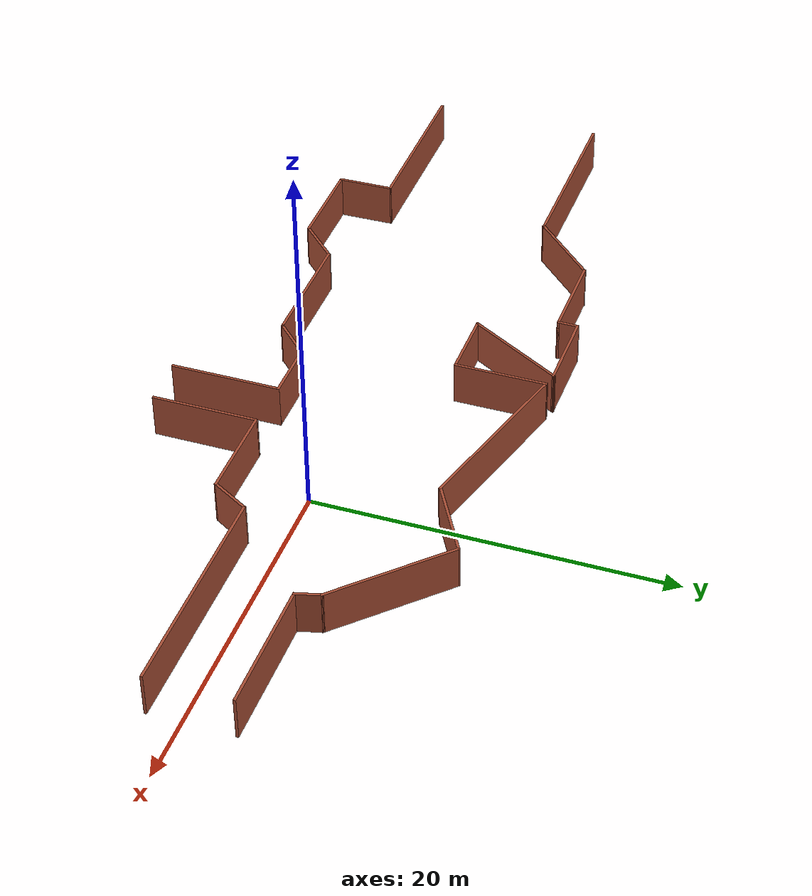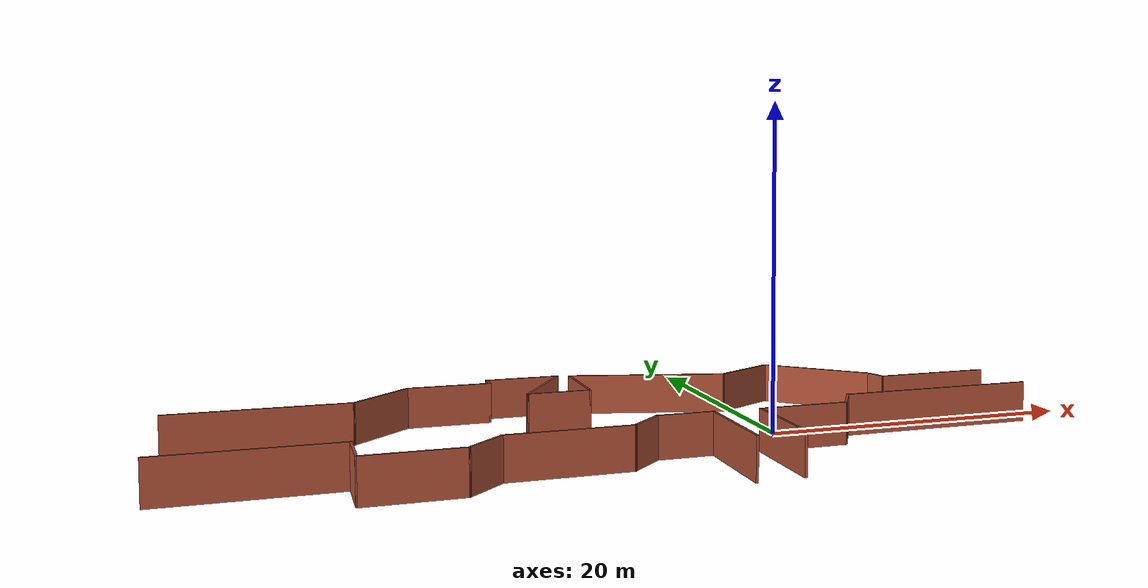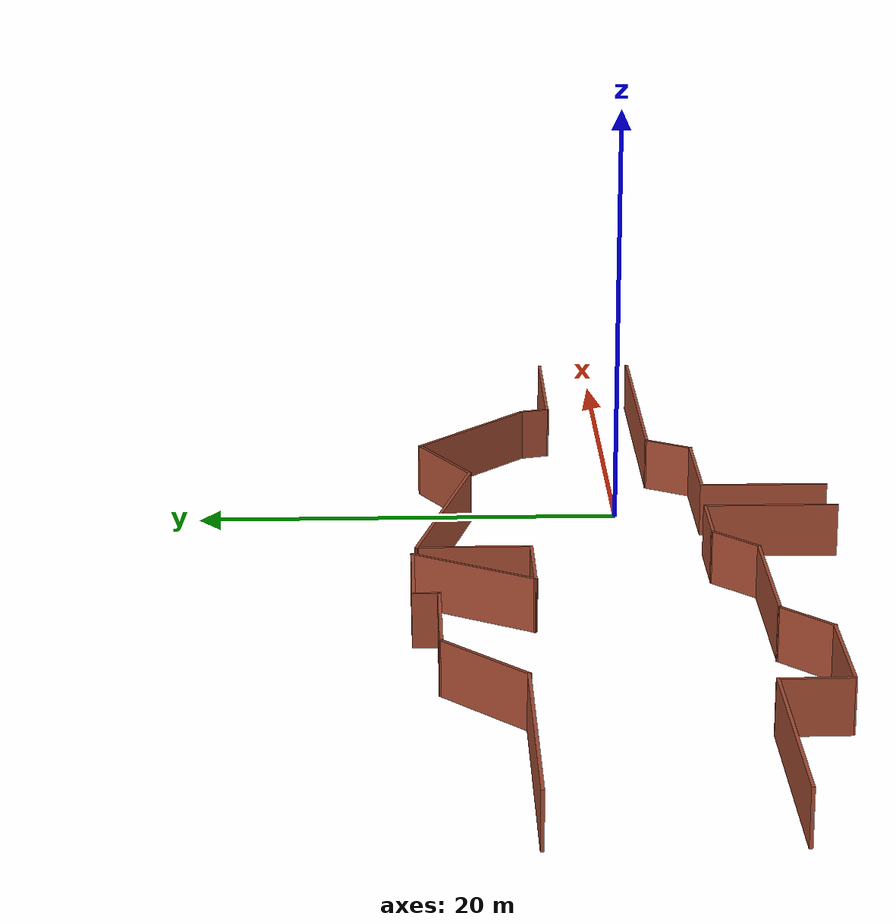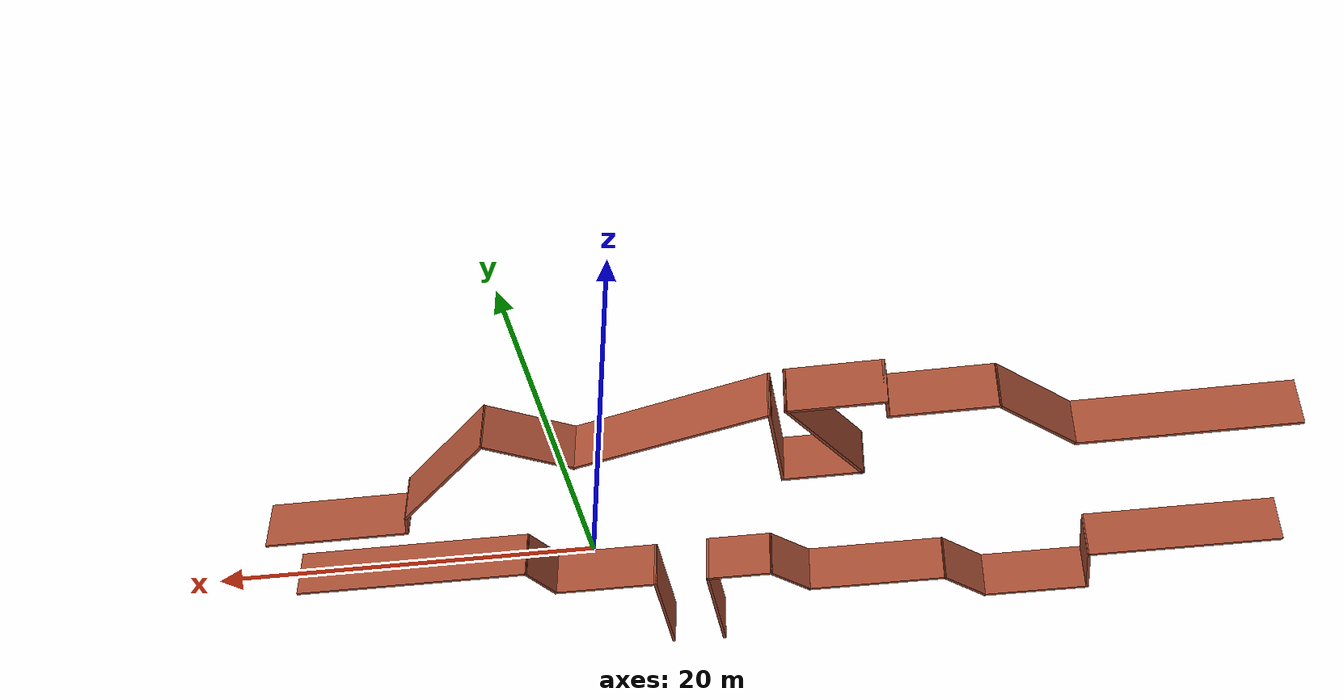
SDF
<?xml version='1.0'?>
<sdf version='1.7'>
  <model name='Paredes'>
    <pose>-9.08506 0.015373 0 0 -0 0</pose>
    <link name='Wall_10'>
      <collision name='Wall_10_Collision'>
        <geometry>
          <box>
            <size>5.5 0.15 2.5</size>
          </box>
        </geometry>
        <pose>0 0 1.25 0 -0 0</pose>
      </collision>
      <visual name='Wall_10_Visual'>
        <pose>0 0 1.25 0 -0 0</pose>
        <geometry>
          <box>
            <size>5.5 0.15 2.5</size>
          </box>
        </geometry>
        <material>
          <script>
            <uri>file://media/materials/scripts/gazebo.material</uri>
            <name>Gazebo/Bricks</name>
          </script>
          <ambient>1 1 1 1</ambient>
        </material>
        <meta>
          <layer>0</layer>
        </meta>
      </visual>
      <pose>-13.1667 -7.6021 0 0 -0 0</pose>
    </link>
    <link name='Wall_11'>
      <collision name='Wall_11_Collision'>
        <geometry>
          <box>
            <size>3 0.15 2.5</size>
          </box>
        </geometry>
        <pose>0 0 1.25 0 -0 0</pose>
      </collision>
      <visual name='Wall_11_Visual'>
        <pose>0 0 1.25 0 -0 0</pose>
        <geometry>
          <box>
            <size>3 0.15 2.5</size>
          </box>
        </geometry>
        <material>
          <script>
            <uri>file://media/materials/scripts/gazebo.material</uri>
            <name>Gazebo/Bricks</name>
          </script>
          <ambient>1 1 1 1</ambient>
        </material>
        <meta>
          <layer>0</layer>
        </meta>
      </visual>
      <pose>-9.4841 -6.59447 0 0 -0 0.785398</pose>
    </link>
    <link name='Wall_12'>
      <collision name='Wall_12_Collision'>
        <geometry>
          <box>
            <size>7.25 0.15 2.5</size>
          </box>
        </geometry>
        <pose>0 0 1.25 0 -0 0</pose>
      </collision>
      <visual name='Wall_12_Visual'>
        <pose>0 0 1.25 0 -0 0</pose>
        <geometry>
          <box>
            <size>7.25 0.15 2.5</size>
          </box>
        </geometry>
        <material>
          <script>
            <uri>file://media/materials/scripts/gazebo.material</uri>
            <name>Gazebo/Bricks</name>
          </script>
          <ambient>1 1 1 1</ambient>
        </material>
        <meta>
          <layer>0</layer>
        </meta>
      </visual>
      <pose>-4.92647 -5.58685 0 0 -0 0</pose>
    </link>
    <link name='Wall_13'>
      <collision name='Wall_13_Collision'>
        <geometry>
          <box>
            <size>2.75 0.15 2.5</size>
          </box>
        </geometry>
        <pose>0 0 1.25 0 -0 0</pose>
      </collision>
      <visual name='Wall_13_Visual'>
        <pose>0 0 1.25 0 -0 0</pose>
        <geometry>
          <box>
            <size>2.75 0.15 2.5</size>
          </box>
        </geometry>
        <material>
          <script>
            <uri>file://media/materials/scripts/gazebo.material</uri>
            <name>Gazebo/Bricks</name>
          </script>
          <ambient>1 1 1 1</ambient>
        </material>
        <meta>
          <layer>0</layer>
        </meta>
      </visual>
      <pose>-0.457232 -4.66761 0 0 -0 0.785398</pose>
    </link>
    <link name='Wall_14'>
      <collision name='Wall_14_Collision'>
        <geometry>
          <box>
            <size>3.5 0.15 2.5</size>
          </box>
        </geometry>
        <pose>0 0 1.25 0 -0 0</pose>
      </collision>
      <visual name='Wall_14_Visual'>
        <pose>0 0 1.25 0 -0 0</pose>
        <geometry>
          <box>
            <size>3.5 0.15 2.5</size>
          </box>
        </geometry>
        <material>
          <script>
            <uri>file://media/materials/scripts/gazebo.material</uri>
            <name>Gazebo/Bricks</name>
          </script>
          <ambient>1 1 1 1</ambient>
        </material>
        <meta>
          <layer>0</layer>
        </meta>
      </visual>
      <pose>2.13701 -3.74837 0 0 -0 0</pose>
    </link>
    <link name='Wall_15'>
      <collision name='Wall_15_Collision'>
        <geometry>
          <box>
            <size>6.25 0.15 2.5</size>
          </box>
        </geometry>
        <pose>0 0 1.25 0 -0 0</pose>
      </collision>
      <visual name='Wall_15_Visual'>
        <pose>0 0 1.25 0 -0 0</pose>
        <geometry>
          <box>
            <size>6.25 0.15 2.5</size>
          </box>
        </geometry>
        <material>
          <script>
            <uri>file://media/materials/scripts/gazebo.material</uri>
            <name>Gazebo/Bricks</name>
          </script>
          <ambient>1 1 1 1</ambient>
        </material>
        <meta>
          <layer>0</layer>
        </meta>
      </visual>
      <pose>3.81201 -6.79837 0 0 -0 -1.5708</pose>
    </link>
    <link name='Wall_18'>
      <collision name='Wall_18_Collision'>
        <geometry>
          <box>
            <size>6 0.15 2.5</size>
          </box>
        </geometry>
        <pose>0 0 1.25 0 -0 0</pose>
      </collision>
      <visual name='Wall_18_Visual'>
        <pose>0 0 1.25 0 -0 0</pose>
        <geometry>
          <box>
            <size>6 0.15 2.5</size>
          </box>
        </geometry>
        <material>
          <script>
            <uri>file://media/materials/scripts/gazebo.material</uri>
            <name>Gazebo/Bricks</name>
          </script>
          <ambient>1 1 1 1</ambient>
        </material>
        <meta>
          <layer>0</layer>
        </meta>
      </visual>
      <pose>6.61325 -6.81078 0 0 -0 1.5708</pose>
    </link>
    <link name='Wall_19'>
      <collision name='Wall_19_Collision'>
        <geometry>
          <box>
            <size>5.5 0.15 2.5</size>
          </box>
        </geometry>
        <pose>0 0 1.25 0 -0 0</pose>
      </collision>
      <visual name='Wall_19_Visual'>
        <pose>0 0 1.25 0 -0 0</pose>
        <geometry>
          <box>
            <size>5.5 0.15 2.5</size>
          </box>
        </geometry>
        <material>
          <script>
            <uri>file://media/materials/scripts/gazebo.material</uri>
            <name>Gazebo/Bricks</name>
          </script>
          <ambient>1 1 1 1</ambient>
        </material>
        <meta>
          <layer>0</layer>
        </meta>
      </visual>
      <pose>9.28825 -3.88578 0 0 -0 0</pose>
    </link>
    <link name='Wall_20'>
      <collision name='Wall_20_Collision'>
        <geometry>
          <box>
            <size>2.5 0.15 2.5</size>
          </box>
        </geometry>
        <pose>0 0 1.25 0 -0 0</pose>
      </collision>
      <visual name='Wall_20_Visual'>
        <pose>0 0 1.25 0 -0 0</pose>
        <geometry>
          <box>
            <size>2.5 0.15 2.5</size>
          </box>
        </geometry>
        <material>
          <script>
            <uri>file://media/materials/scripts/gazebo.material</uri>
            <name>Gazebo/Bricks</name>
          </script>
          <ambient>1 1 1 1</ambient>
        </material>
        <meta>
          <layer>0</layer>
        </meta>
      </visual>
      <pose>12.5508 -2.8682 0 0 -0 1.0472</pose>
    </link>
    <link name='Wall_21'>
      <collision name='Wall_21_Collision'>
        <geometry>
          <box>
            <size>12.5 0.15 2.5</size>
          </box>
        </geometry>
        <pose>0 0 1.25 0 -0 0</pose>
      </collision>
      <visual name='Wall_21_Visual'>
        <pose>0 0 1.25 0 -0 0</pose>
        <geometry>
          <box>
            <size>12.5 0.15 2.5</size>
          </box>
        </geometry>
        <material>
          <script>
            <uri>file://media/materials/scripts/gazebo.material</uri>
            <name>Gazebo/Bricks</name>
          </script>
          <ambient>1 1 1 1</ambient>
        </material>
        <meta>
          <layer>0</layer>
        </meta>
      </visual>
      <pose>19.3133 -1.85062 0 0 -0 0</pose>
    </link>
    <link name='Wall_24'>
      <collision name='Wall_24_Collision'>
        <geometry>
          <box>
            <size>10.5 0.15 2.5</size>
          </box>
        </geometry>
        <pose>0 0 1.25 0 -0 0</pose>
      </collision>
      <visual name='Wall_24_Visual'>
        <pose>0 0 1.25 0 -0 0</pose>
        <geometry>
          <box>
            <size>10.5 0.15 2.5</size>
          </box>
        </geometry>
        <material>
          <script>
            <uri>file://media/materials/scripts/gazebo.material</uri>
            <name>Gazebo/Bricks</name>
          </script>
          <ambient>1 1 1 1</ambient>
        </material>
        <meta>
          <layer>0</layer>
        </meta>
      </visual>
      <pose>-20.2667 5.29145 0 0 -0 0</pose>
    </link>
    <link name='Wall_25'>
      <collision name='Wall_25_Collision'>
        <geometry>
          <box>
            <size>5 0.15 2.5</size>
          </box>
        </geometry>
        <pose>0 0 1.25 0 -0 0</pose>
      </collision>
      <visual name='Wall_25_Visual'>
        <pose>0 0 1.25 0 -0 0</pose>
        <geometry>
          <box>
            <size>5 0.15 2.5</size>
          </box>
        </geometry>
        <material>
          <script>
            <uri>file://media/materials/scripts/gazebo.material</uri>
            <name>Gazebo/Bricks</name>
          </script>
          <ambient>1 1 1 1</ambient>
        </material>
        <meta>
          <layer>0</layer>
        </meta>
      </visual>
      <pose>-13.377 7.00618 0 0 -0 0.785398</pose>
    </link>
    <link name='Wall_26'>
      <collision name='Wall_26_Collision'>
        <geometry>
          <box>
            <size>5.25 0.15 2.5</size>
          </box>
        </geometry>
        <pose>0 0 1.25 0 -0 0</pose>
      </collision>
      <visual name='Wall_26_Visual'>
        <pose>0 0 1.25 0 -0 0</pose>
        <geometry>
          <box>
            <size>5.25 0.15 2.5</size>
          </box>
        </geometry>
        <material>
          <script>
            <uri>file://media/materials/scripts/gazebo.material</uri>
            <name>Gazebo/Bricks</name>
          </script>
          <ambient>1 1 1 1</ambient>
        </material>
        <meta>
          <layer>0</layer>
        </meta>
      </visual>
      <pose>-9.11226 8.72092 0 0 -0 0</pose>
    </link>
    <link name='Wall_27'>
      <collision name='Wall_27_Collision'>
        <geometry>
          <box>
            <size>1.25 0.15 2.5</size>
          </box>
        </geometry>
        <pose>0 0 1.25 0 -0 0</pose>
      </collision>
      <visual name='Wall_27_Visual'>
        <pose>0 0 1.25 0 -0 0</pose>
        <geometry>
          <box>
            <size>1.25 0.15 2.5</size>
          </box>
        </geometry>
        <material>
          <script>
            <uri>file://media/materials/scripts/gazebo.material</uri>
            <name>Gazebo/Bricks</name>
          </script>
          <ambient>1 1 1 1</ambient>
        </material>
        <meta>
          <layer>0</layer>
        </meta>
      </visual>
      <pose>-6.56226 9.27092 0 0 -0 1.5708</pose>
    </link>
    <link name='Wall_28'>
      <collision name='Wall_28_Collision'>
        <geometry>
          <box>
            <size>4.75 0.15 2.5</size>
          </box>
        </geometry>
        <pose>0 0 1.25 0 -0 0</pose>
      </collision>
      <visual name='Wall_28_Visual'>
        <pose>0 0 1.25 0 -0 0</pose>
        <geometry>
          <box>
            <size>4.75 0.15 2.5</size>
          </box>
        </geometry>
        <material>
          <script>
            <uri>file://media/materials/scripts/gazebo.material</uri>
            <name>Gazebo/Bricks</name>
          </script>
          <ambient>1 1 1 1</ambient>
        </material>
        <meta>
          <layer>0</layer>
        </meta>
      </visual>
      <pose>-4.26226 9.82092 0 0 -0 0</pose>
    </link>
    <link name='Wall_29'>
      <collision name='Wall_29_Collision'>
        <geometry>
          <box>
            <size>6.25 0.15 2.5</size>
          </box>
        </geometry>
        <pose>0 0 1.25 0 -0 0</pose>
      </collision>
      <visual name='Wall_29_Visual'>
        <pose>0 0 1.25 0 -0 0</pose>
        <geometry>
          <box>
            <size>6.25 0.15 2.5</size>
          </box>
        </geometry>
        <material>
          <script>
            <uri>file://media/materials/scripts/gazebo.material</uri>
            <name>Gazebo/Bricks</name>
          </script>
          <ambient>1 1 1 1</ambient>
        </material>
        <meta>
          <layer>0</layer>
        </meta>
      </visual>
      <pose>-3.48726 7.17954 0 0 -0 -2.0944</pose>
    </link>
    <link name='Wall_30'>
      <collision name='Wall_30_Collision'>
        <geometry>
          <box>
            <size>4 0.15 2.5</size>
          </box>
        </geometry>
        <pose>0 0 1.25 0 -0 0</pose>
      </collision>
      <visual name='Wall_30_Visual'>
        <pose>0 0 1.25 0 -0 0</pose>
        <geometry>
          <box>
            <size>4 0.15 2.5</size>
          </box>
        </geometry>
        <material>
          <script>
            <uri>file://media/materials/scripts/gazebo.material</uri>
            <name>Gazebo/Bricks</name>
          </script>
          <ambient>1 1 1 1</ambient>
        </material>
        <meta>
          <layer>0</layer>
        </meta>
      </visual>
      <pose>-3.08726 4.53816 0 0 -0 0</pose>
    </link>
    <link name='Wall_31'>
      <collision name='Wall_31_Collision'>
        <geometry>
          <box>
            <size>5.25 0.15 2.5</size>
          </box>
        </geometry>
        <pose>0 0 1.25 0 -0 0</pose>
      </collision>
      <visual name='Wall_31_Visual'>
        <pose>0 0 1.25 0 -0 0</pose>
        <geometry>
          <box>
            <size>5.25 0.15 2.5</size>
          </box>
        </geometry>
        <material>
          <script>
            <uri>file://media/materials/scripts/gazebo.material</uri>
            <name>Gazebo/Bricks</name>
          </script>
          <ambient>1 1 1 1</ambient>
        </material>
        <meta>
          <layer>0</layer>
        </meta>
      </visual>
      <pose>-1.16226 7.08816 0 0 -0 1.5708</pose>
    </link>
    <link name='Wall_32'>
      <collision name='Wall_32_Collision'>
        <geometry>
          <box>
            <size>10.25 0.15 2.5</size>
          </box>
        </geometry>
        <pose>0 0 1.25 0 -0 0</pose>
      </collision>
      <visual name='Wall_32_Visual'>
        <pose>0 0 1.25 0 -0 0</pose>
        <geometry>
          <box>
            <size>10.25 0.15 2.5</size>
          </box>
        </geometry>
        <material>
          <script>
            <uri>file://media/materials/scripts/gazebo.material</uri>
            <name>Gazebo/Bricks</name>
          </script>
          <ambient>1 1 1 1</ambient>
        </material>
        <meta>
          <layer>0</layer>
        </meta>
      </visual>
      <pose>3.71567 8.33113 0 0 -0 -0.261799</pose>
    </link>
    <link name='Wall_33'>
      <collision name='Wall_33_Collision'>
        <geometry>
          <box>
            <size>4.75 0.15 2.5</size>
          </box>
        </geometry>
        <pose>0 0 1.25 0 -0 0</pose>
      </collision>
      <visual name='Wall_33_Visual'>
        <pose>0 0 1.25 0 -0 0</pose>
        <geometry>
          <box>
            <size>4.75 0.15 2.5</size>
          </box>
        </geometry>
        <material>
          <script>
            <uri>file://media/materials/scripts/gazebo.material</uri>
            <name>Gazebo/Bricks</name>
          </script>
          <ambient>1 1 1 1</ambient>
        </material>
        <meta>
          <layer>0</layer>
        </meta>
      </visual>
      <pose>10.5855 8.17409 0 0 -0 0.523599</pose>
    </link>
    <link name='Wall_34'>
      <collision name='Wall_34_Collision'>
        <geometry>
          <box>
            <size>7.5 0.15 2.5</size>
          </box>
        </geometry>
        <pose>0 0 1.25 0 -0 0</pose>
      </collision>
      <visual name='Wall_34_Visual'>
        <pose>0 0 1.25 0 -0 0</pose>
        <geometry>
          <box>
            <size>7.5 0.15 2.5</size>
          </box>
        </geometry>
        <material>
          <script>
            <uri>file://media/materials/scripts/gazebo.material</uri>
            <name>Gazebo/Bricks</name>
          </script>
          <ambient>1 1 1 1</ambient>
        </material>
        <meta>
          <layer>0</layer>
        </meta>
      </visual>
      <pose>15.1759 6.72547 0 0 -0 -0.785398</pose>
    </link>
    <link name='Wall_35'>
      <collision name='Wall_35_Collision'>
        <geometry>
          <box>
            <size>1.5 0.15 2.5</size>
          </box>
        </geometry>
        <pose>0 0 1.25 0 -0 0</pose>
      </collision>
      <visual name='Wall_35_Visual'>
        <pose>0 0 1.25 0 -0 0</pose>
        <geometry>
          <box>
            <size>1.5 0.15 2.5</size>
          </box>
        </geometry>
        <material>
          <script>
            <uri>file://media/materials/scripts/gazebo.material</uri>
            <name>Gazebo/Bricks</name>
          </script>
          <ambient>1 1 1 1</ambient>
        </material>
        <meta>
          <layer>0</layer>
        </meta>
      </visual>
      <pose>17.9492 3.47485 0 0 -0 -1.309</pose>
    </link>
    <link name='Wall_36'>
      <collision name='Wall_36_Collision'>
        <geometry>
          <box>
            <size>7.5 0.15 2.5</size>
          </box>
        </geometry>
        <pose>0 0 1.25 0 -0 0</pose>
      </collision>
      <visual name='Wall_36_Visual'>
        <pose>0 0 1.25 0 -0 0</pose>
        <geometry>
          <box>
            <size>7.5 0.15 2.5</size>
          </box>
        </geometry>
        <material>
          <script>
            <uri>file://media/materials/scripts/gazebo.material</uri>
            <name>Gazebo/Bricks</name>
          </script>
          <ambient>1 1 1 1</ambient>
        </material>
        <meta>
          <layer>0</layer>
        </meta>
      </visual>
      <pose>21.799 2.82285 0 0 -0 0</pose>
    </link>
    <link name='Wall_8'>
      <collision name='Wall_8_Collision'>
        <geometry>
          <box>
            <size>9.75 0.15 2.5</size>
          </box>
        </geometry>
        <pose>0 0 1.25 0 -0 0</pose>
      </collision>
      <visual name='Wall_8_Visual'>
        <pose>0 0 1.25 0 -0 0</pose>
        <geometry>
          <box>
            <size>9.75 0.15 2.5</size>
          </box>
        </geometry>
        <material>
          <script>
            <uri>file://media/materials/scripts/gazebo.material</uri>
            <name>Gazebo/Bricks</name>
          </script>
          <ambient>1 1 1 1</ambient>
        </material>
        <meta>
          <layer>0</layer>
        </meta>
      </visual>
      <pose>-20.6883 -4.5251 0 0 -0 0</pose>
    </link>
    <link name='Wall_9'>
      <collision name='Wall_9_Collision'>
        <geometry>
          <box>
            <size>3.22735 0.15 2.5</size>
          </box>
        </geometry>
        <pose>0 0 1.25 0 -0 0</pose>
      </collision>
      <visual name='Wall_9_Visual'>
        <pose>0 0 1.25 0 -0 0</pose>
        <geometry>
          <box>
            <size>3.22735 0.15 2.5</size>
          </box>
        </geometry>
        <material>
          <script>
            <uri>file://media/materials/scripts/gazebo.material</uri>
            <name>Gazebo/Bricks</name>
          </script>
          <ambient>1 1 1 1</ambient>
        </material>
        <meta>
          <layer>0</layer>
        </meta>
      </visual>
      <pose>-15.865 -6.0636 0 0 -0 -1.55568</pose>
    </link>
    <static>1</static>
  </model>
</sdf>
